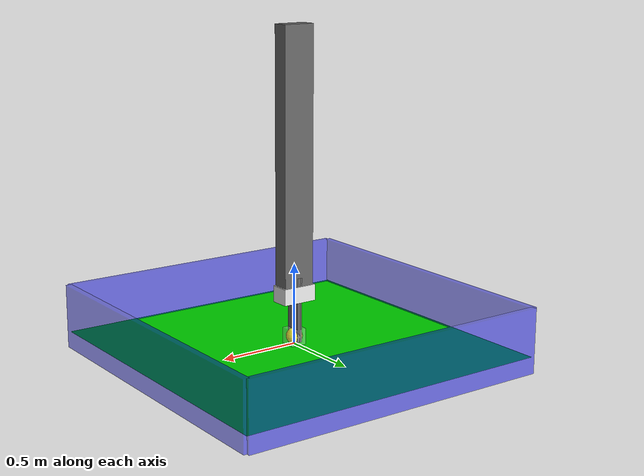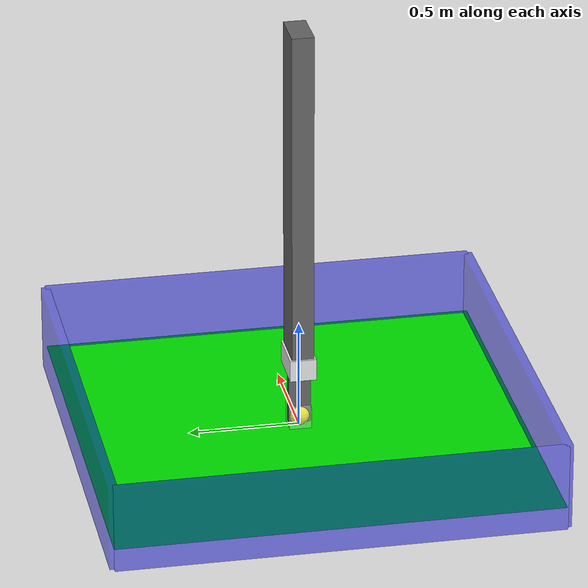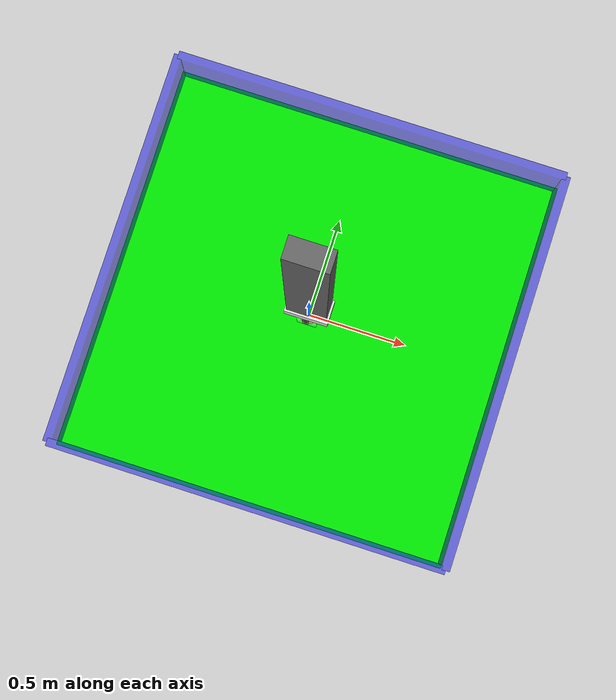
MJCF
<mujoco>
    <!-- Default settings for different tags of the model. -->
    <default>
        <joint pos="0 0 0" armature="1" limited="true" damping="1000" />
        <geom pos="0 0 0" rgba=".4 .4 .4 1" condim="3" contype="0" conaffinity="0" />
        <motor ctrlrange="-1 1" ctrllimited="true" gear="500" />
    </default>

    <compiler inertiafromgeom="true" />
    <option gravity="0 0 -2" timestep="0.01"/>

    <!-- Definition of all geometric shapes and joints. -->
    <worldbody>
        <!-- Diffuse lighting at position (0,0,3) pointing downwards in z direction. -->
        <light diffuse=".5 .5 .5" pos="0 0 10" dir="0 0 -1" castshadow="false" />

        <!-- Plane centered at origin with color green and size 1*1 unit^2. -->
        <geom name="table" type="plane" size="1 1 0.1" rgba="0 0.9 0 1" friction="0 0 0" contype="1" conaffinity="1" />

        <!-- Build walls around the plane. -->
        <geom type="box" size="1 0.02 0.2" pos="0 1 0.1" rgba="0 0 0.9 0.5"  contype="1" conaffinity="1" />
        <geom type="box" size="1 0.02 0.2" pos="0 -1 0.1" rgba="0 0 0.9 0.5"  contype="1" conaffinity="1" />
        <geom type="box" size="0.02 1 0.2" pos="1 0 0.1" rgba="0 0 0.9 0.5"  contype="1" conaffinity="1" />
        <geom type="box" size="0.02 1 0.2" pos="-1 0 0.1" rgba="0 0 0.9 0.5"  contype="1" conaffinity="1" />

        <!-- Build robotic arms. -->
        <body name="robot" pos="0 0 1.12">
            <joint name="cart_slide_x" type="slide" axis="1 0 0" range="-1 1" />
            <joint name="cart_slide_y" type="slide" axis="0 1 0" range="-1 1" />
            <joint name="cart_slide_z" type="slide" axis="0 0 1" range="0 0.3" />
            <joint name="cart_rotate_z" type="hinge" axis="0 0 1" range="-124 124" />

            <geom name="arm" type="box" size=".1 .05 .8" pos="0 0 0" />
            <geom name="wrist" type="box" size=".11 .06 .05" pos="0 0 -0.8" rgba=".9 .9 .9 1" contype="1" conaffinity="1" />

            <body name="l_hand" pos="-0.01 0 -0.9">
                <joint name="l_hand_slide_x" type="slide" axis="-1 0 0" range="0 0.07" />
                <geom name="l_finger" type="box" size="0.01 .05 .2" density="0.001" contype="1" conaffinity="1" />
            </body>

            <body name="r_hand" pos="0.001 0 -0.9">
                <joint name="r_hand_slide_x" type="slide" axis="1 0 0" range="0 0.07" />
                <geom name="r_finger" type="box" size="0.01 .05 .2" density="0.001" contype="1" conaffinity="1" />
            </body>
        </body>

        <!-- Ball for the robot to push. -->
        <body name="ball" pos="0 0 0.05">
            <geom type="sphere" size="0.05" rgba=".9 .9 0 1" density='0.00001' contype="1" conaffinity="1" />
            <joint name="ball_slide_z" type="slide" axis="0 0 1" range="-10 10" damping="10.0" />
            <joint name="ball_slide_x" type="slide" axis="1 0 0" range="-10 10" damping="10.0" />
            <joint name="ball_slide_y" type="slide" axis="0 1 0" range="-10 10" damping="10.0" />
        </body>

        <!-- Goal for the ball to be pushed to. -->
        <body name="goal" pos="0 0 0.05">
            <geom type="box" size="0.05 0.05 0.05" rgba="1 1 1 0.3" contype="0" conaffinity="0" />
            <joint name="goal_slide_x" type="slide" axis="1 0 0" range="-10 10" damping="0.5" />
            <joint name="goal_slide_y" type="slide" axis="0 1 0" range="-10 10" damping="0.5" />
        </body>
    </worldbody>

    <!-- Actuators that can be controlled by action vector. -->
    <actuator>
        <motor joint="cart_slide_x" />
        <motor joint="cart_slide_y" />
        <motor joint="cart_slide_z" />
        <motor joint="cart_rotate_z" />
        <motor joint="l_hand_slide_x" />
        <motor joint="r_hand_slide_x" />
    </actuator>
</mujoco>
